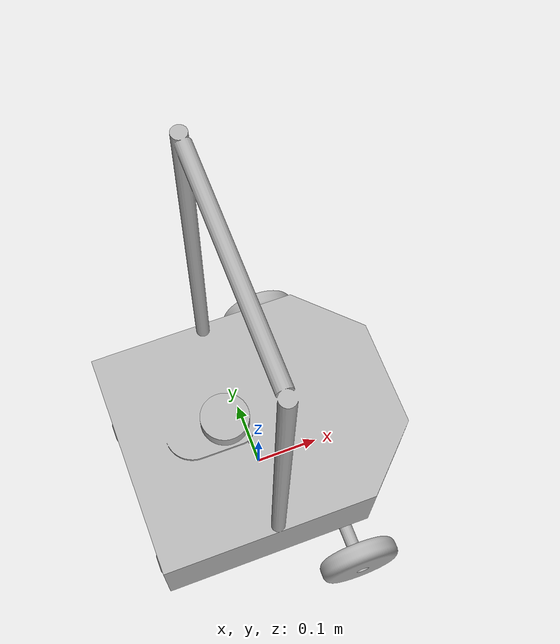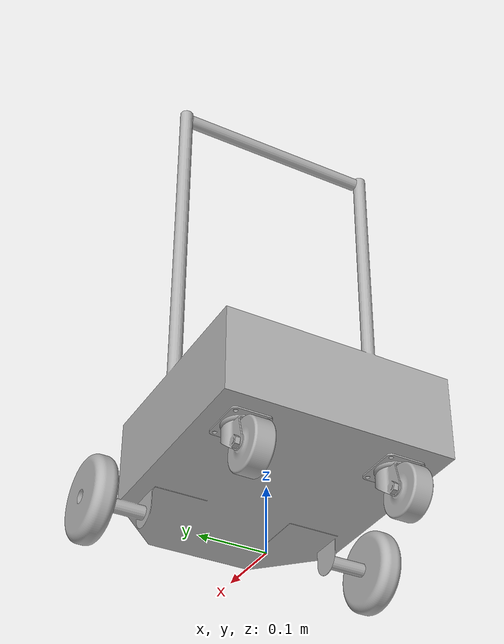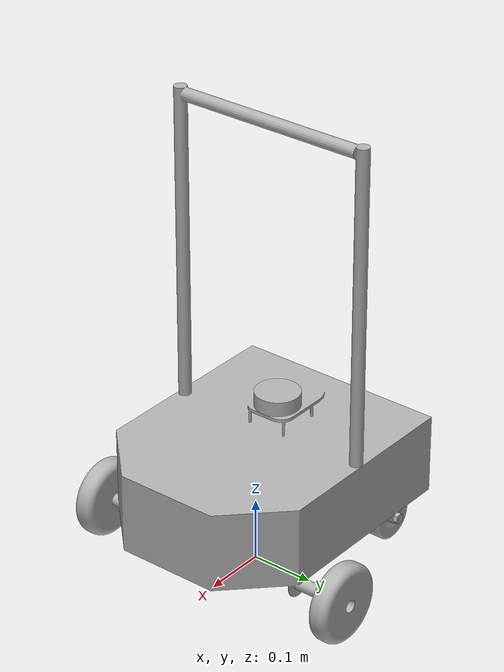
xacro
<?xml version="1.0" ?>
<robot name="gaitron" xmlns:xacro="http://www.ros.org/wiki/xacro">

<xacro:include filename="$(find gaitron_description)/urdf/materials.xacro" />
<xacro:include filename="$(find gaitron_description)/urdf/gaitron.trans" />
<xacro:include filename="$(find gaitron_description)/urdf/gaitron.gazebo" />
<link name="base_link">
  <inertial>
    <origin xyz="-0.018187302316957723 0.0003146789492654537 0.2730942746847694" rpy="0 0 0"/>
    <mass value="8.773901551379977"/>
    <inertia ixx="0.539982" iyy="0.485468" izz="0.213919" ixy="-0.000382" iyz="0.000155" ixz="0.019258"/>
  </inertial>
  <visual>
    <origin xyz="0 0 0" rpy="0 0 0"/>
    <geometry>
      <mesh filename="package://gaitron_description/meshes/base_link.stl" scale="0.001 0.001 0.001"/>
    </geometry>
    <material name="silver"/>
  </visual>
  <collision>
    <origin xyz="0 0 0" rpy="0 0 0"/>
    <geometry>
      <mesh filename="package://gaitron_description/meshes/base_link.stl" scale="0.001 0.001 0.001"/>
    </geometry>
  </collision>
</link>

<link name="base_laser_1">
  <inertial>
    <origin xyz="-9.486219194887457e-08 -3.333972625520898e-08 0.011499999999999955" rpy="0 0 0"/>
    <mass value="0.08426568311017746"/>
    <inertia ixx="3e-05" iyy="3e-05" izz="5.2e-05" ixy="0.0" iyz="0.0" ixz="-0.0"/>
  </inertial>
  <visual>
    <origin xyz="0.050656 2.1e-05 -0.24251" rpy="0 0 0"/>
    <geometry>
      <mesh filename="package://gaitron_description/meshes/base_laser_1.stl" scale="0.001 0.001 0.001"/>
    </geometry>
    <material name="silver"/>
  </visual>
  <collision>
    <origin xyz="0.050656 2.1e-05 -0.24251" rpy="0 0 0"/>
    <geometry>
      <mesh filename="package://gaitron_description/meshes/base_laser_1.stl" scale="0.001 0.001 0.001"/>
    </geometry>
  </collision>
</link>

<link name="left_wheel_1">
  <inertial>
    <origin xyz="3.7956646488368495e-07 0.01649999999999993 0.0" rpy="0 0 0"/>
    <mass value="0.042330100058116465"/>
    <inertia ixx="4.2e-05" iyy="7.7e-05" izz="4.2e-05" ixy="0.0" iyz="0.0" ixz="0.0"/>
  </inertial>
  <visual>
    <origin xyz="-0.081659 -0.203 -0.061033" rpy="0 0 0"/>
    <geometry>
      <mesh filename="package://gaitron_description/meshes/left_wheel_1.stl" scale="0.001 0.001 0.001"/>
    </geometry>
    <material name="silver"/>
  </visual>
  <collision>
    <origin xyz="-0.081659 -0.203 -0.061033" rpy="0 0 0"/>
    <geometry>
      <mesh filename="package://gaitron_description/meshes/left_wheel_1.stl" scale="0.001 0.001 0.001"/>
    </geometry>
  </collision>
</link>

<link name="right_wheel_1">
  <inertial>
    <origin xyz="-4.747351942530065e-07 -0.016500000000000015 2.0757467511511862e-07" rpy="0 0 0"/>
    <mass value="0.3280582754504032"/>
    <inertia ixx="0.000325" iyy="0.000595" izz="0.000325" ixy="0.0" iyz="0.0" ixz="-0.0"/>
  </inertial>
  <visual>
    <origin xyz="-0.08166 0.203 -0.061033" rpy="0 0 0"/>
    <geometry>
      <mesh filename="package://gaitron_description/meshes/right_wheel_1.stl" scale="0.001 0.001 0.001"/>
    </geometry>
    <material name="silver"/>
  </visual>
  <collision>
    <origin xyz="-0.08166 0.203 -0.061033" rpy="0 0 0"/>
    <geometry>
      <mesh filename="package://gaitron_description/meshes/right_wheel_1.stl" scale="0.001 0.001 0.001"/>
    </geometry>
  </collision>
</link>

<link name="mount2_1">
  <inertial>
    <origin xyz="3.788362733236905e-07 3.347698420280709e-07 -0.0011499999999999982" rpy="0 0 0"/>
    <mass value="0.07023170190652236"/>
    <inertia ixx="1.9e-05" iyy="2.7e-05" izz="4.6e-05" ixy="0.0" iyz="0.0" ixz="-0.0"/>
  </inertial>
  <visual>
    <origin xyz="0.140541 0.113849 -0.08599" rpy="0 0 0"/>
    <geometry>
      <mesh filename="package://gaitron_description/meshes/mount2_1.stl" scale="0.001 0.001 0.001"/>
    </geometry>
    <material name="silver"/>
  </visual>
  <collision>
    <origin xyz="0.140541 0.113849 -0.08599" rpy="0 0 0"/>
    <geometry>
      <mesh filename="package://gaitron_description/meshes/mount2_1.stl" scale="0.001 0.001 0.001"/>
    </geometry>
  </collision>
</link>

<link name="right_arm_1">
  <inertial>
    <origin xyz="-0.008537708186053067 0.001039880549903907 -0.01680540920244966" rpy="0 0 0"/>
    <mass value="0.18456574532830566"/>
    <inertia ixx="0.000102" iyy="0.000107" izz="9.9e-05" ixy="4e-06" iyz="6e-06" ixz="-3.5e-05"/>
  </inertial>
  <visual>
    <origin xyz="0.140541 0.113849 -0.08369" rpy="0 0 0"/>
    <geometry>
      <mesh filename="package://gaitron_description/meshes/right_arm_1.stl" scale="0.001 0.001 0.001"/>
    </geometry>
    <material name="silver"/>
  </visual>
  <collision>
    <origin xyz="0.140541 0.113849 -0.08369" rpy="0 0 0"/>
    <geometry>
      <mesh filename="package://gaitron_description/meshes/right_arm_1.stl" scale="0.001 0.001 0.001"/>
    </geometry>
  </collision>
</link>

<link name="right_caster_1">
  <inertial>
    <origin xyz="3.19185525315957e-07 3.3476981878277634e-07 -6.25848733948331e-10" rpy="0 0 0"/>
    <mass value="0.1214566303951998"/>
    <inertia ixx="5.1e-05" iyy="8.3e-05" izz="5.1e-05" ixy="-0.0" iyz="0.0" ixz="0.0"/>
  </inertial>
  <visual>
    <origin xyz="0.169884 0.113849 -0.03769" rpy="0 0 0"/>
    <geometry>
      <mesh filename="package://gaitron_description/meshes/right_caster_1.stl" scale="0.001 0.001 0.001"/>
    </geometry>
    <material name="silver"/>
  </visual>
  <collision>
    <origin xyz="0.169884 0.113849 -0.03769" rpy="0 0 0"/>
    <geometry>
      <mesh filename="package://gaitron_description/meshes/right_caster_1.stl" scale="0.001 0.001 0.001"/>
    </geometry>
  </collision>
</link>

<link name="mount1_1">
  <inertial>
    <origin xyz="3.788362733236905e-07 3.347698420558265e-07 -0.0011499999999999982" rpy="0 0 0"/>
    <mass value="0.07023170190652235"/>
    <inertia ixx="1.9e-05" iyy="2.7e-05" izz="4.6e-05" ixy="0.0" iyz="0.0" ixz="0.0"/>
  </inertial>
  <visual>
    <origin xyz="0.140541 -0.114151 -0.08599" rpy="0 0 0"/>
    <geometry>
      <mesh filename="package://gaitron_description/meshes/mount1_1.stl" scale="0.001 0.001 0.001"/>
    </geometry>
    <material name="silver"/>
  </visual>
  <collision>
    <origin xyz="0.140541 -0.114151 -0.08599" rpy="0 0 0"/>
    <geometry>
      <mesh filename="package://gaitron_description/meshes/mount1_1.stl" scale="0.001 0.001 0.001"/>
    </geometry>
  </collision>
</link>

<link name="left_arm_1">
  <inertial>
    <origin xyz="-0.008537708186058923 0.0010398836486579799 -0.01680540920244923" rpy="0 0 0"/>
    <mass value="0.18456574532843886"/>
    <inertia ixx="0.000102" iyy="0.000107" izz="9.9e-05" ixy="4e-06" iyz="6e-06" ixz="-3.5e-05"/>
  </inertial>
  <visual>
    <origin xyz="0.140541 -0.114151 -0.08369" rpy="0 0 0"/>
    <geometry>
      <mesh filename="package://gaitron_description/meshes/left_arm_1.stl" scale="0.001 0.001 0.001"/>
    </geometry>
    <material name="silver"/>
  </visual>
  <collision>
    <origin xyz="0.140541 -0.114151 -0.08369" rpy="0 0 0"/>
    <geometry>
      <mesh filename="package://gaitron_description/meshes/left_arm_1.stl" scale="0.001 0.001 0.001"/>
    </geometry>
  </collision>
</link>

<link name="left_caster_1">
  <inertial>
    <origin xyz="3.19185525315957e-07 3.347698188105319e-07 -6.258487478261188e-10" rpy="0 0 0"/>
    <mass value="0.1214566303951998"/>
    <inertia ixx="5.1e-05" iyy="8.3e-05" izz="5.1e-05" ixy="0.0" iyz="0.0" ixz="-0.0"/>
  </inertial>
  <visual>
    <origin xyz="0.169884 -0.114151 -0.03769" rpy="0 0 0"/>
    <geometry>
      <mesh filename="package://gaitron_description/meshes/left_caster_1.stl" scale="0.001 0.001 0.001"/>
    </geometry>
    <material name="silver"/>
  </visual>
  <collision>
    <origin xyz="0.169884 -0.114151 -0.03769" rpy="0 0 0"/>
    <geometry>
      <mesh filename="package://gaitron_description/meshes/left_caster_1.stl" scale="0.001 0.001 0.001"/>
    </geometry>
  </collision>
</link>

<joint name="rig1" type="fixed">
  <origin xyz="-0.050656 -2.1e-05 0.24251" rpy="0 0 0"/>
  <parent link="base_link"/>
  <child link="base_laser_1"/>
</joint>

<joint name="rev1" type="continuous">
  <origin xyz="0.081659 0.203 0.061033" rpy="0 0 0"/>
  <parent link="base_link"/>
  <child link="left_wheel_1"/>
  <axis xyz="0.0 1.0 0.0"/>
</joint>

<joint name="rev2" type="continuous">
  <origin xyz="0.08166 -0.203 0.061033" rpy="0 0 0"/>
  <parent link="base_link"/>
  <child link="right_wheel_1"/>
  <axis xyz="0.0 1.0 0.0"/>
</joint>

<joint name="rig2" type="fixed">
  <origin xyz="-0.140541 -0.113849 0.08599" rpy="0 0 0"/>
  <parent link="base_link"/>
  <child link="mount2_1"/>
</joint>

<joint name="rev3" type="continuous">
  <origin xyz="0.0 0.0 -0.0023" rpy="0 0 0"/>
  <parent link="mount2_1"/>
  <child link="right_arm_1"/>
  <axis xyz="0.0 0.0 -1.0"/>
</joint>

<joint name="rev4" type="continuous">
  <origin xyz="-0.029343 0.0 -0.046" rpy="0 0 0"/>
  <parent link="right_arm_1"/>
  <child link="right_caster_1"/>
  <axis xyz="0.0 1.0 -0.0"/>
</joint>

<joint name="rig3" type="fixed">
  <origin xyz="-0.140541 0.114151 0.08599" rpy="0 0 0"/>
  <parent link="base_link"/>
  <child link="mount1_1"/>
</joint>

<joint name="rev5" type="continuous">
  <origin xyz="0.0 0.0 -0.0023" rpy="0 0 0"/>
  <parent link="mount1_1"/>
  <child link="left_arm_1"/>
  <axis xyz="0.0 0.0 -1.0"/>
</joint>

<joint name="rev6" type="continuous">
  <origin xyz="-0.029343 0.0 -0.046" rpy="0 0 0"/>
  <parent link="left_arm_1"/>
  <child link="left_caster_1"/>
  <axis xyz="0.0 1.0 -0.0"/>
</joint>

</robot>

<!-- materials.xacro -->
<robot name="gaitron" xmlns:xacro="http://www.ros.org/wiki/xacro" >

<material name="silver">
  <color rgba="0.700 0.700 0.700 1.000"/>
</material>

</robot>

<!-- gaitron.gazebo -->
<robot name="gaitron" xmlns:xacro="http://www.ros.org/wiki/xacro" >

<xacro:property name="body_color" value="Gazebo/Silver" />

<gazebo>
  <plugin name="control" filename="libgazebo_ros_control.so"/>
</gazebo>
<gazebo reference="base_link">
  <material>${body_color}</material>
  <mu1>0.2</mu1>
  <mu2>0.2</mu2>
  <selfCollide>true</selfCollide>
  <gravity>true</gravity>
</gazebo>

<gazebo reference="base_laser_1">
  <material>${body_color}</material>
  <mu1>0.2</mu1>
  <mu2>0.2</mu2>
  <selfCollide>true</selfCollide>
</gazebo>

<gazebo reference="left_wheel_1">
  <material>${body_color}</material>
  <mu1>0.2</mu1>
  <mu2>0.2</mu2>
  <selfCollide>true</selfCollide>
</gazebo>

<gazebo reference="right_wheel_1">
  <material>${body_color}</material>
  <mu1>0.2</mu1>
  <mu2>0.2</mu2>
  <selfCollide>true</selfCollide>
</gazebo>

<gazebo reference="mount2_1">
  <material>${body_color}</material>
  <mu1>0.2</mu1>
  <mu2>0.2</mu2>
  <selfCollide>true</selfCollide>
</gazebo>

<gazebo reference="right_arm_1">
  <material>${body_color}</material>
  <mu1>0.2</mu1>
  <mu2>0.2</mu2>
  <selfCollide>true</selfCollide>
</gazebo>

<gazebo reference="right_caster_1">
  <material>${body_color}</material>
  <mu1>0.2</mu1>
  <mu2>0.2</mu2>
  <selfCollide>true</selfCollide>
</gazebo>

<gazebo reference="mount1_1">
  <material>${body_color}</material>
  <mu1>0.2</mu1>
  <mu2>0.2</mu2>
  <selfCollide>true</selfCollide>
</gazebo>

<gazebo reference="left_arm_1">
  <material>${body_color}</material>
  <mu1>0.2</mu1>
  <mu2>0.2</mu2>
  <selfCollide>true</selfCollide>
</gazebo>

<gazebo reference="left_caster_1">
  <material>${body_color}</material>
  <mu1>0.2</mu1>
  <mu2>0.2</mu2>
  <selfCollide>true</selfCollide>
</gazebo>

<gazebo>
  <plugin name="differential_drive_controller" filename="libgazebo_ros_diff_drive.so">

    <!-- Plugin update rate in Hz -->
    <updateRate>100</updateRate>

    <!-- Name of left joint, defaults to `left_joint` -->
    <leftJoint>rev1</leftJoint>

    <!-- Name of right joint, defaults to `right_joint` -->
    <rightJoint>rev2</rightJoint>

    <!-- The distance from the center of one wheel to the other, in meters, defaults to 0.34 m -->
    <wheelSeparation>0.2</wheelSeparation>

    <!-- Diameter of the wheels, in meters, defaults to 0.15 m -->
    <wheelDiameter>0.12</wheelDiameter>

    <!-- Wheel acceleration, in rad/s^2, defaults to 0.0 rad/s^2 -->
    <wheelAcceleration>1.0</wheelAcceleration>

    <!-- Maximum torque which the wheels can produce, in Nm, defaults to 5 Nm -->
    <wheelTorque>26</wheelTorque>

    <!-- Topic to receive geometry_msgs/Twist message commands, defaults to `cmd_vel` -->
    <commandTopic>cmd_vel</commandTopic>

    <!-- Topic to publish nav_msgs/Odometry messages, defaults to `odom` -->
    <odometryTopic>odom</odometryTopic>

    <!-- Odometry frame, defaults to `odom` -->
    <odometryFrame>odom</odometryFrame>

    <!-- Robot frame to calculate odometry from, defaults to `base_footprint` -->
    <robotBaseFrame>base_link</robotBaseFrame>

    <!-- Odometry source, 0 for ENCODER, 1 for WORLD, defaults to WORLD -->
    <odometrySource>1</odometrySource>

    <!-- Set to true to publish transforms for the wheel links, defaults to false -->
    <publishWheelTF>false</publishWheelTF>

    <!-- Set to true to publish transforms for the odometry, defaults to true -->
    <publishOdom>true</publishOdom>

    <!-- Set to true to publish sensor_msgs/JointState on /joint_states for the wheel joints, defaults to false -->
    <publishWheelJointState>false</publishWheelJointState>

    <!-- Set to true to swap right and left wheels, defaults to true -->
    <legacyMode>false</legacyMode>
  </plugin>
</gazebo>

<!-- hokuyo -->
  <gazebo reference="base_laser_1">
    <sensor type="ray" name="head_hokuyo_sensor">
      <pose>0 0 0 0 0 0</pose>
      <visualize>true</visualize>
      <update_rate>40</update_rate>
      <ray>
        <scan>
          <horizontal>
            <samples>360</samples>
            <resolution>1</resolution>
            <min_angle>-3.14</min_angle>
            <max_angle>3.14</max_angle>
          </horizontal>
        </scan>
        <range>
          <min>0.3</min>
          <max>12</max>
          <resolution>0.01</resolution>
        </range>
        <noise>
        	<type>gaussian</type>
        	<mean>0.0</mean>
        	<stddev>0.01</stddev>
        </noise>
      </ray>
      <plugin name="gazebo_ros_head_rplidar_controller" filename="libgazebo_ros_laser.so">
        <topicName>/scan</topicName>
        <frameName>base_laser_1</frameName>
      </plugin>
    </sensor>
  </gazebo>

</robot>
